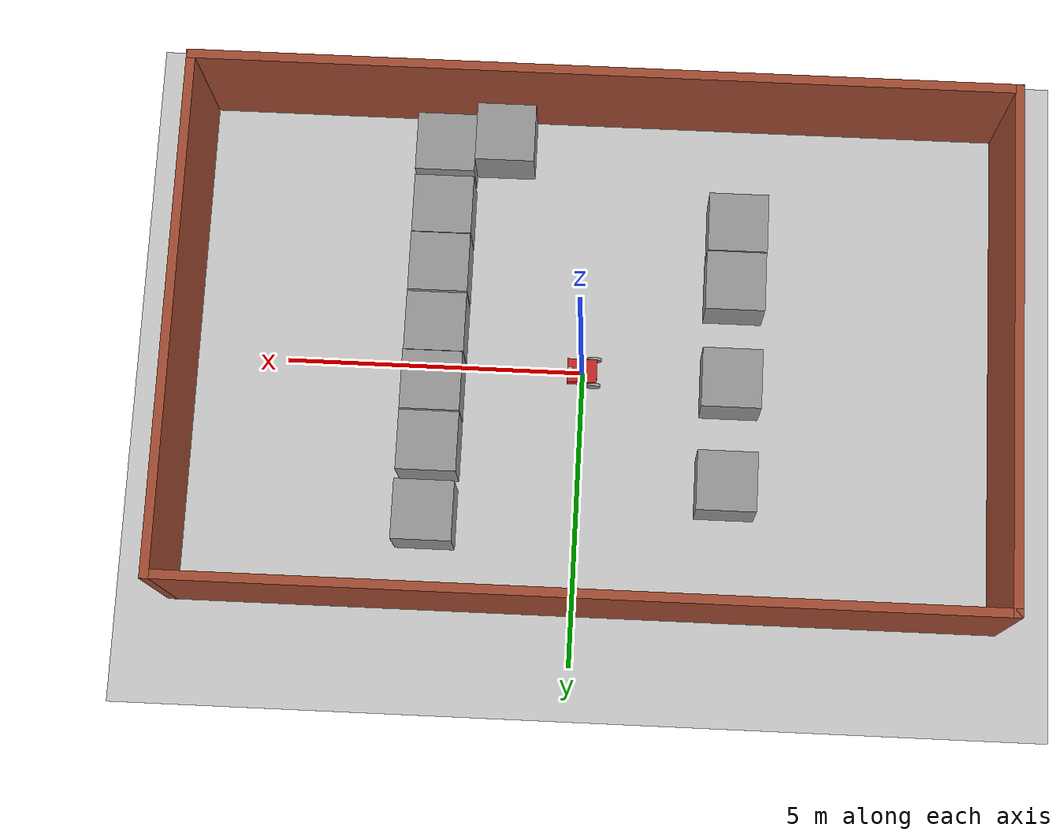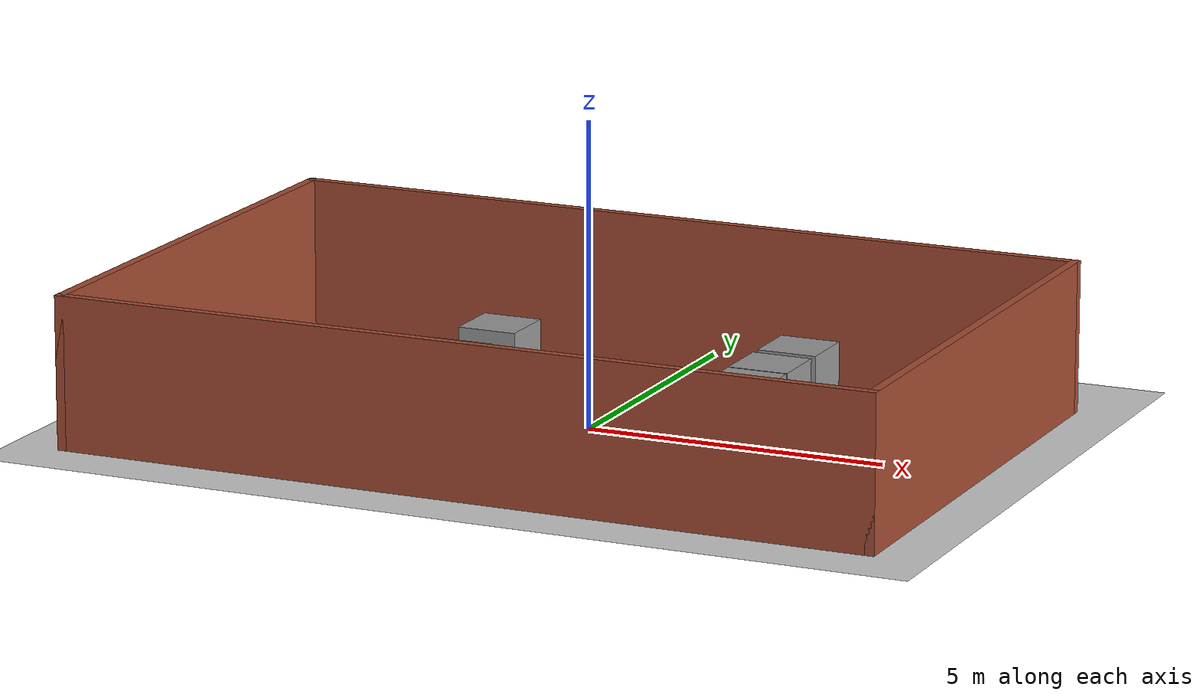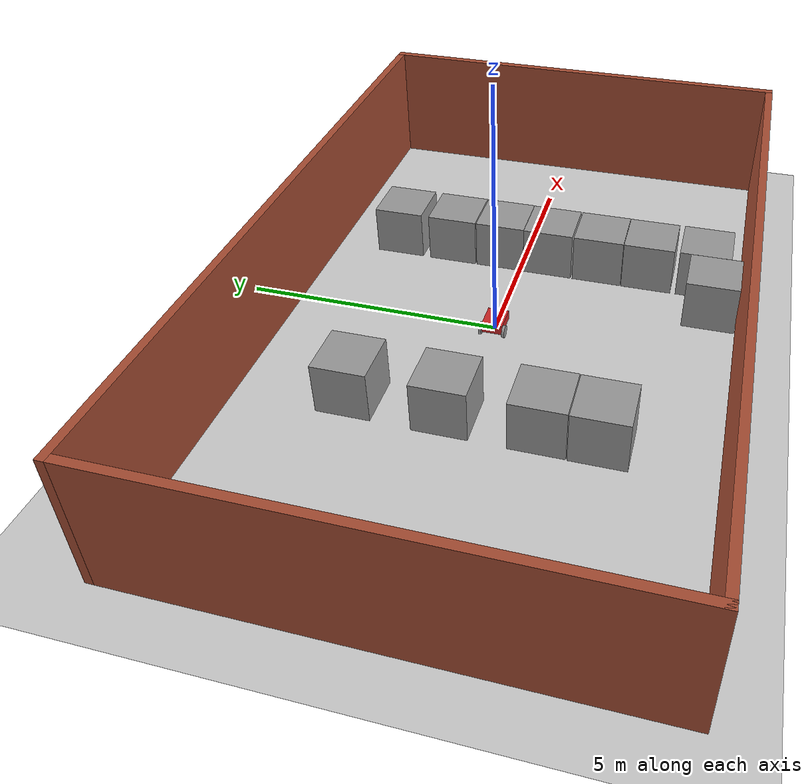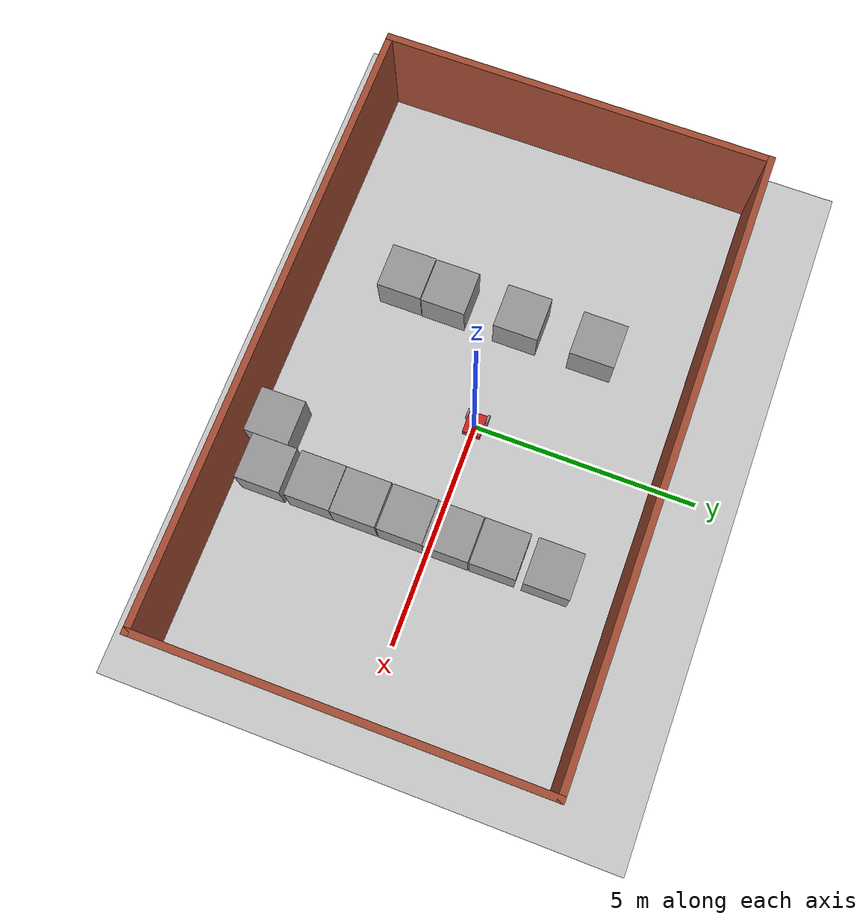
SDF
<sdf version="1.6">
 <world name="default">
  <light name="sun" type="directional">
   <pose>0 0 10 0 -0 0</pose>
   <diffuse>0.8 0.8 0.8 1</diffuse>
   <specular>0.2 0.2 0.2 1</specular>
   <attenuation>
    <range>1000</range>
    <constant>0.9</constant>
    <linear>0.01</linear>
    <quadratic>0.001</quadratic>
   </attenuation>
   <direction>-0.5 0.1 -0.9</direction>
  </light>
  <model name="ground_plane">
   <static>1</static>
   <link name="link">
    <collision name="collision">
     <geometry><plane><normal>0 0 1</normal><size>100 100</size></plane></geometry>
     <surface><friction><ode><mu>100</mu><mu2>50</mu2></ode></friction></surface>
    </collision>
    <visual name="visual">
     <cast_shadows>0</cast_shadows>
     <geometry><plane><normal>0 0 1</normal><size>100 100</size></plane></geometry>
     <material>
      <script><uri>file://media/materials/scripts/gazebo.material</uri><name>Gazebo/Grey</name></script>
     </material>
    </visual>
   </link>
  </model>
  <gravity>0 0 -9.8</gravity>
  <magnetic_field>6e-06 2.3e-05 -4.2e-05</magnetic_field>
  <atmosphere type="adiabatic"/>
  <physics name="default_physics" default="0" type="ode">
   <max_step_size>0.001</max_step_size>
   <real_time_factor>1</real_time_factor>
   <real_time_update_rate>1000</real_time_update_rate>
  </physics>
  <scene><ambient>0.4 0.4 0.4 1</ambient><background>0.7 0.7 0.7 1</background><shadows>1</shadows></scene>
  <audio><device>default</device></audio>
  <spherical_coordinates>
   <surface_model>EARTH_WGS84</surface_model>
   <latitude_deg>0</latitude_deg>
   <longitude_deg>0</longitude_deg>
   <elevation>0</elevation>
   <heading_deg>0</heading_deg>
  </spherical_coordinates>
  <model name="oda">
   <pose>-0.17251 -0.228517 0 0 -0 0</pose>
   <link name="Wall_24">
    <collision name="Wall_24_Collision">
     <geometry><box><size>8.75 0.15 2.5</size></box></geometry>
     <pose>0 0 1.25 0 -0 0</pose>
    </collision>
    <visual name="Wall_24_Visual">
     <pose>0 0 1.25 0 -0 0</pose>
     <geometry><box><size>8.75 0.15 2.5</size></box></geometry>
     <material>
      <script><uri>file://media/materials/scripts/gazebo.material</uri><name>Gazebo/Bricks</name></script>
      <ambient>1 1 1 1</ambient>
     </material>
     <meta><layer>0</layer></meta>
    </visual>
    <pose>-6.8 -0 0 0 -0 -1.5708</pose>
   </link>
   <link name="Wall_25">
    <collision name="Wall_25_Collision">
     <geometry><box><size>13.75 0.15 2.5</size></box></geometry>
     <pose>0 0 1.25 0 -0 0</pose>
    </collision>
    <visual name="Wall_25_Visual">
     <pose>0 0 1.25 0 -0 0</pose>
     <geometry><box><size>13.75 0.15 2.5</size></box></geometry>
     <material>
      <script><uri>file://media/materials/scripts/gazebo.material</uri><name>Gazebo/Bricks</name></script>
      <ambient>1 1 1 1</ambient>
     </material>
     <meta><layer>0</layer></meta>
    </visual>
    <pose>0 -4.3 0 0 -0 0</pose>
   </link>
   <link name="Wall_26">
    <collision name="Wall_26_Collision">
     <geometry><box><size>8.75 0.15 2.5</size></box></geometry>
     <pose>0 0 1.25 0 -0 0</pose>
    </collision>
    <visual name="Wall_26_Visual">
     <pose>0 0 1.25 0 -0 0</pose>
     <geometry><box><size>8.75 0.15 2.5</size></box></geometry>
     <material>
      <script><uri>file://media/materials/scripts/gazebo.material</uri><name>Gazebo/Bricks</name></script>
      <ambient>1 1 1 1</ambient>
     </material>
     <meta><layer>0</layer></meta>
    </visual>
    <pose>6.8 -0 0 0 -0 1.5708</pose>
   </link>
   <link name="Wall_27">
    <collision name="Wall_27_Collision">
     <geometry><box><size>13.75 0.15 2.5</size></box></geometry>
     <pose>0 0 1.25 0 -0 0</pose>
    </collision>
    <visual name="Wall_27_Visual">
     <pose>0 0 1.25 0 -0 0</pose>
     <geometry><box><size>13.75 0.15 2.5</size></box></geometry>
     <material>
      <script><uri>file://media/materials/scripts/gazebo.material</uri><name>Gazebo/Bricks</name></script>
      <ambient>1 1 1 1</ambient>
     </material>
     <meta><layer>0</layer></meta>
    </visual>
    <pose>0 4.3 0 0 -0 3.14159</pose>
   </link>
   <static>1</static>
  </model>
  <model name="unit_box">
   <pose>-2.52359 -2.50773 0.499995 0 1e-05 0</pose>
   <link name="link">
    <inertial>
     <mass>1</mass>
     <inertia>
      <ixx>0.166667</ixx>
      <ixy>0</ixy>
      <ixz>0</ixz>
      <iyy>0.166667</iyy>
      <iyz>0</iyz>
      <izz>0.166667</izz>
     </inertia>
    </inertial>
    <collision name="collision"><geometry><box><size>1 1 1</size></box></geometry></collision>
    <visual name="visual">
     <geometry><box><size>1 1 1</size></box></geometry>
     <material>
      <script><name>Gazebo/Grey</name><uri>file://media/materials/scripts/gazebo.material</uri></script>
     </material>
    </visual>
   </link>
  </model>
  <model name="unit_box_0">
   <pose>-2.51396 -1.49134 0.499995 0 1e-05 0</pose>
   <link name="link">
    <inertial>
     <mass>1</mass>
     <inertia>
      <ixx>0.166667</ixx>
      <ixy>0</ixy>
      <ixz>0</ixz>
      <iyy>0.166667</iyy>
      <iyz>0</iyz>
      <izz>0.166667</izz>
     </inertia>
    </inertial>
    <collision name="collision"><geometry><box><size>1 1 1</size></box></geometry></collision>
    <visual name="visual">
     <geometry><box><size>1 1 1</size></box></geometry>
     <material>
      <script><name>Gazebo/Grey</name><uri>file://media/materials/scripts/gazebo.material</uri></script>
     </material>
    </visual>
   </link>
  </model>
  <model name="unit_box_1">
   <pose>-2.50244 0.176214 0.499995 0 1e-05 0</pose>
   <link name="link">
    <inertial>
     <mass>1</mass>
     <inertia>
      <ixx>0.166667</ixx>
      <ixy>0</ixy>
      <ixz>0</ixz>
      <iyy>0.166667</iyy>
      <iyz>0</iyz>
      <izz>0.166667</izz>
     </inertia>
    </inertial>
    <collision name="collision"><geometry><box><size>1 1 1</size></box></geometry></collision>
    <visual name="visual">
     <geometry><box><size>1 1 1</size></box></geometry>
     <material>
      <script><name>Gazebo/Grey</name><uri>file://media/materials/scripts/gazebo.material</uri></script>
     </material>
    </visual>
   </link>
  </model>
  <model name="unit_box_2">
   <pose>-2.47404 1.91491 0.499995 0 1e-05 0</pose>
   <link name="link">
    <inertial>
     <mass>1</mass>
     <inertia>
      <ixx>0.166667</ixx>
      <ixy>0</ixy>
      <ixz>0</ixz>
      <iyy>0.166667</iyy>
      <iyz>0</iyz>
      <izz>0.166667</izz>
     </inertia>
    </inertial>
    <collision name="collision"><geometry><box><size>1 1 1</size></box></geometry></collision>
    <visual name="visual">
     <geometry><box><size>1 1 1</size></box></geometry>
     <material>
      <script><name>Gazebo/Grey</name><uri>file://media/materials/scripts/gazebo.material</uri></script>
     </material>
    </visual>
   </link>
  </model>
  <model name="unit_box_4">
   <pose>2.49413 2.61865 0.499995 1e-05 -0 0</pose>
   <link name="link">
    <inertial>
     <mass>1</mass>
     <inertia>
      <ixx>0.166667</ixx>
      <ixy>0</ixy>
      <ixz>0</ixz>
      <iyy>0.166667</iyy>
      <iyz>0</iyz>
      <izz>0.166667</izz>
     </inertia>
    </inertial>
    <collision name="collision"><geometry><box><size>1 1 1</size></box></geometry></collision>
    <visual name="visual">
     <geometry><box><size>1 1 1</size></box></geometry>
     <material>
      <script><name>Gazebo/Grey</name><uri>file://media/materials/scripts/gazebo.material</uri></script>
     </material>
    </visual>
   </link>
  </model>
  <model name="unit_box_3">
   <pose>2.48592 1.45975 0.499995 1e-05 -0 5e-06</pose>
   <link name="link">
    <inertial>
     <mass>1</mass>
     <inertia>
      <ixx>0.166667</ixx>
      <ixy>0</ixy>
      <ixz>0</ixz>
      <iyy>0.166667</iyy>
      <iyz>0</iyz>
      <izz>0.166667</izz>
     </inertia>
    </inertial>
    <collision name="collision"><geometry><box><size>1 1 1</size></box></geometry></collision>
    <visual name="visual">
     <geometry><box><size>1 1 1</size></box></geometry>
     <material>
      <script><name>Gazebo/Grey</name><uri>file://media/materials/scripts/gazebo.material</uri></script>
     </material>
    </visual>
   </link>
  </model>
  <model name="unit_box_5">
   <pose>2.48647 0.436676 0.499995 1e-05 -0 5e-06</pose>
   <link name="link">
    <inertial>
     <mass>1</mass>
     <inertia>
      <ixx>0.166667</ixx>
      <ixy>0</ixy>
      <ixz>0</ixz>
      <iyy>0.166667</iyy>
      <iyz>0</iyz>
      <izz>0.166667</izz>
     </inertia>
    </inertial>
    <collision name="collision"><geometry><box><size>1 1 1</size></box></geometry></collision>
    <visual name="visual">
     <geometry><box><size>1 1 1</size></box></geometry>
     <material>
      <script><name>Gazebo/Grey</name><uri>file://media/materials/scripts/gazebo.material</uri></script>
     </material>
    </visual>
   </link>
  </model>
  <model name="unit_box_6">
   <pose>2.47621 -0.569694 0.499995 0 1e-05 0.000563</pose>
   <link name="link">
    <inertial>
     <mass>1</mass>
     <inertia>
      <ixx>0.166667</ixx>
      <ixy>0</ixy>
      <ixz>0</ixz>
      <iyy>0.166667</iyy>
      <iyz>0</iyz>
      <izz>0.166667</izz>
     </inertia>
    </inertial>
    <collision name="collision"><geometry><box><size>1 1 1</size></box></geometry></collision>
    <visual name="visual">
     <geometry><box><size>1 1 1</size></box></geometry>
     <material>
      <script><name>Gazebo/Grey</name><uri>file://media/materials/scripts/gazebo.material</uri></script>
     </material>
    </visual>
   </link>
  </model>
  <model name="unit_box_7">
   <pose>2.47342 -1.60289 0.499995 0 1e-05 0.000584</pose>
   <link name="link">
    <inertial>
     <mass>1</mass>
     <inertia>
      <ixx>0.166667</ixx>
      <ixy>0</ixy>
      <ixz>0</ixz>
      <iyy>0.166667</iyy>
      <iyz>0</iyz>
      <izz>0.166667</izz>
     </inertia>
    </inertial>
    <collision name="collision"><geometry><box><size>1 1 1</size></box></geometry></collision>
    <visual name="visual">
     <geometry><box><size>1 1 1</size></box></geometry>
     <material>
      <script><name>Gazebo/Grey</name><uri>file://media/materials/scripts/gazebo.material</uri></script>
     </material>
    </visual>
   </link>
  </model>
  <model name="unit_box_8">
   <pose>2.47019 -2.61273 0.499995 0 1e-05 0.000924</pose>
   <link name="link">
    <inertial>
     <mass>1</mass>
     <inertia>
      <ixx>0.166667</ixx>
      <ixy>0</ixy>
      <ixz>0</ixz>
      <iyy>0.166667</iyy>
      <iyz>0</iyz>
      <izz>0.166667</izz>
     </inertia>
    </inertial>
    <collision name="collision"><geometry><box><size>1 1 1</size></box></geometry></collision>
    <visual name="visual">
     <geometry><box><size>1 1 1</size></box></geometry>
     <material>
      <script><name>Gazebo/Grey</name><uri>file://media/materials/scripts/gazebo.material</uri></script>
     </material>
    </visual>
   </link>
  </model>
  <model name="unit_box_9">
   <pose>2.47698 -3.71511 0.499995 -1e-05 0 0.001368</pose>
   <link name="link">
    <inertial>
     <mass>1</mass>
     <inertia>
      <ixx>0.166667</ixx>
      <ixy>0</ixy>
      <ixz>0</ixz>
      <iyy>0.166667</iyy>
      <iyz>0</iyz>
      <izz>0.166667</izz>
     </inertia>
    </inertial>
    <collision name="collision"><geometry><box><size>1 1 1</size></box></geometry></collision>
    <visual name="visual">
     <geometry><box><size>1 1 1</size></box></geometry>
     <material>
      <script><name>Gazebo/Grey</name><uri>file://media/materials/scripts/gazebo.material</uri></script>
     </material>
    </visual>
   </link>
  </model>
  <model name="unit_box_10">
   <pose>1.4771 -3.9321 0.5 0 -0 0.001989</pose>
   <link name="link">
    <inertial>
     <mass>1</mass>
     <inertia>
      <ixx>0.166667</ixx>
      <ixy>0</ixy>
      <ixz>0</ixz>
      <iyy>0.166667</iyy>
      <iyz>0</iyz>
      <izz>0.166667</izz>
     </inertia>
    </inertial>
    <collision name="collision"><geometry><box><size>1 1 1</size></box></geometry></collision>
    <visual name="visual">
     <geometry><box><size>1 1 1</size></box></geometry>
     <material>
      <script><name>Gazebo/Grey</name><uri>file://media/materials/scripts/gazebo.material</uri></script>
     </material>
    </visual>
   </link>
  </model>
  <model name="uv_urdf2">
   <link name="base_link">
    <inertial>
     <pose>0.000356 0 -0.000224 0 -0 0</pose>
     <mass>48.2484</mass>
     <inertia>
      <ixx>0.00145558</ixx>
      <ixy>0</ixy>
      <ixz>0.00231815</ixz>
      <iyy>0.00514745</iyy>
      <iyz>0</iyz>
      <izz>0.00369187</izz>
     </inertia>
    </inertial>
    <collision name="base_link_collision">
     <geometry><box><size>0.5 0.4 0.2</size></box></geometry>
     <surface>
      <contact><ode><kp>5e+06</kp><kd>10</kd><max_vel>0.1</max_vel><min_depth>0.001</min_depth></ode></contact>
      <friction><ode><mu>0.5</mu><mu2>0.5</mu2><fdir1>1 0 0</fdir1></ode></friction>
     </surface>
    </collision>
    <collision name="base_link_fixed_joint_lump__castor_link_collision_1">
     <pose>0.215 0 -0.135 0 -0 0</pose>
     <geometry><sphere><radius>0.035</radius></sphere></geometry>
     <surface>
      <contact><ode><kp>5e+06</kp><kd>10</kd><max_vel>0.1</max_vel><min_depth>0.001</min_depth></ode></contact>
      <friction><ode><mu>0.01</mu><mu2>0.01</mu2><fdir1>1 0 0</fdir1></ode></friction>
     </surface>
    </collision>
    <visual name="base_link_visual">
     <geometry><box><size>0.5 0.4 0.2</size></box></geometry>
     <material>
      <script><name>Gazebo/Red</name><uri>file://media/materials/scripts/gazebo.material</uri></script>
     </material>
    </visual>
    <visual name="base_link_fixed_joint_lump__castor_link_visual_1">
     <pose>0.215 0 -0.135 0 -0 0</pose>
     <geometry><sphere><radius>0.035</radius></sphere></geometry>
     <material>
      <script><name>Gazebo/Black</name><uri>file://media/materials/scripts/gazebo.material</uri></script>
     </material>
    </visual>
    <visual name="base_link_fixed_joint_lump__laser_link_visual_2">
     <pose>0.2 0 0.125 0 -0 0</pose>
     <geometry><cylinder><length>0.05</length><radius>0.05</radius></cylinder></geometry>
     <material><script><uri>__default__</uri><name>__default__</name></script></material>
    </visual>
    <sensor name="laser_sensor" type="ray">
     <visualize>1</visualize>
     <update_rate>10</update_rate>
     <ray>
      <scan>
       <horizontal>
        <samples>720</samples>
        <resolution>1</resolution>
        <min_angle>-1.5708</min_angle>
        <max_angle>1.5708</max_angle>
       </horizontal>
       <vertical><samples>1</samples><min_angle>0</min_angle><max_angle>0</max_angle></vertical>
      </scan>
      <range><min>0.15</min><max>25</max><resolution>0.01</resolution></range>
      <noise><type>gaussian</type><mean>0</mean><stddev>0.01</stddev></noise>
     </ray>
     <plugin name="gazebo_ros_laser_controller" filename="libgazebo_ros_laser.so">
      <topicName>/scan</topicName>
      <frameName>laser_link</frameName>
      <robotNamespace>/</robotNamespace>
     </plugin>
     <pose>0.2 0 0.125 0 -0 0</pose>
    </sensor>
   </link>
   <link name="lw_link">
    <pose>-0.2 0.225 -0.05 -1.5708 0 0</pose>
    <inertial>
     <mass>4</mass>
     <inertia><ixx>0</ixx><ixy>0</ixy><ixz>0</ixz><iyy>0</iyy><iyz>0</iyz><izz>0</izz></inertia>
    </inertial>
    <collision name="lw_link_collision">
     <geometry><cylinder><length>0.05</length><radius>0.12</radius></cylinder></geometry>
     <surface>
      <contact><ode><kp>5e+06</kp><kd>10</kd><max_vel>0.1</max_vel><min_depth>0.001</min_depth></ode></contact>
      <friction><ode><mu>0.8</mu><mu2>0.8</mu2><fdir1>1 0 0</fdir1></ode></friction>
     </surface>
    </collision>
    <visual name="lw_link_visual">
     <geometry><cylinder><length>0.05</length><radius>0.12</radius></cylinder></geometry>
     <material>
      <script><name>Gazebo/Gray</name><uri>file://media/materials/scripts/gazebo.material</uri></script>
     </material>
    </visual>
   </link>
   <joint name="lw_joint" type="revolute">
    <child>lw_link</child>
    <parent>base_link</parent>
    <axis>
     <xyz>0 1 -4e-06</xyz>
     <limit><lower>-1e+16</lower><upper>1e+16</upper></limit>
     <dynamics><spring_reference>0</spring_reference><spring_stiffness>0</spring_stiffness></dynamics>
     <use_parent_model_frame>1</use_parent_model_frame>
    </axis>
   </joint>
   <link name="rw_link">
    <pose>-0.2 -0.225 -0.05 1.5708 -0 0</pose>
    <inertial>
     <mass>4</mass>
     <inertia><ixx>0</ixx><ixy>0</ixy><ixz>0</ixz><iyy>0</iyy><iyz>0</iyz><izz>0</izz></inertia>
    </inertial>
    <collision name="rw_link_collision">
     <geometry><cylinder><length>0.05</length><radius>0.12</radius></cylinder></geometry>
     <surface>
      <contact><ode><kp>5e+06</kp><kd>10</kd><max_vel>0.1</max_vel><min_depth>0.001</min_depth></ode></contact>
      <friction><ode><mu>0.8</mu><mu2>0.8</mu2><fdir1>1 0 0</fdir1></ode></friction>
     </surface>
    </collision>
    <visual name="rw_link_visual">
     <geometry><cylinder><length>0.05</length><radius>0.12</radius></cylinder></geometry>
     <material>
      <script><name>Gazebo/Gray</name><uri>file://media/materials/scripts/gazebo.material</uri></script>
     </material>
    </visual>
   </link>
   <joint name="rw_joint" type="revolute">
    <child>rw_link</child>
    <parent>base_link</parent>
    <axis>
     <xyz>0 1 4e-06</xyz>
     <limit><lower>-1e+16</lower><upper>1e+16</upper></limit>
     <dynamics><spring_reference>0</spring_reference><spring_stiffness>0</spring_stiffness></dynamics>
     <use_parent_model_frame>1</use_parent_model_frame>
    </axis>
   </joint>
   <plugin name="amr_controller" filename="libgazebo_ros_diff_drive.so">
    <commandTopic>cmd_vel</commandTopic>
    <odometryTopic>odom</odometryTopic>
    <odometryFrame>odom</odometryFrame>
    <odometrySource>world</odometrySource>
    <publishOdomTF>1</publishOdomTF>
    <robotBaseFrame>base_link</robotBaseFrame>
    <publishWheelTF>0</publishWheelTF>
    <publishTf>1</publishTf>
    <publishWheelJointState>1</publishWheelJointState>
    <legacyMode>0</legacyMode>
    <updateRate>20</updateRate>
    <leftJoint>lw_joint</leftJoint>
    <rightJoint>rw_joint</rightJoint>
    <wheelSeparation>0.45</wheelSeparation>
    <wheelDiameter>0.24</wheelDiameter>
    <wheelAcceleration>0.5</wheelAcceleration>
    <wheelTorque>200</wheelTorque>
    <rosDebugLevel>na</rosDebugLevel>
    <cmd_vel_timeout>0.27</cmd_vel_timeout>
    <robotNamespace>/</robotNamespace>
   </plugin>
   <static>0</static>
   <plugin name="gazebo_ros_control" filename="libgazebo_ros_control.so">
    <robotNamespace>/</robotNamespace>
    <robotSimType>gazebo_ros_control/DefaultRobotHWSim</robotSimType>
   </plugin>
   <pose>0.000112 0 0.16897 0 7e-05 0</pose>
  </model>
 </world>
</sdf>
